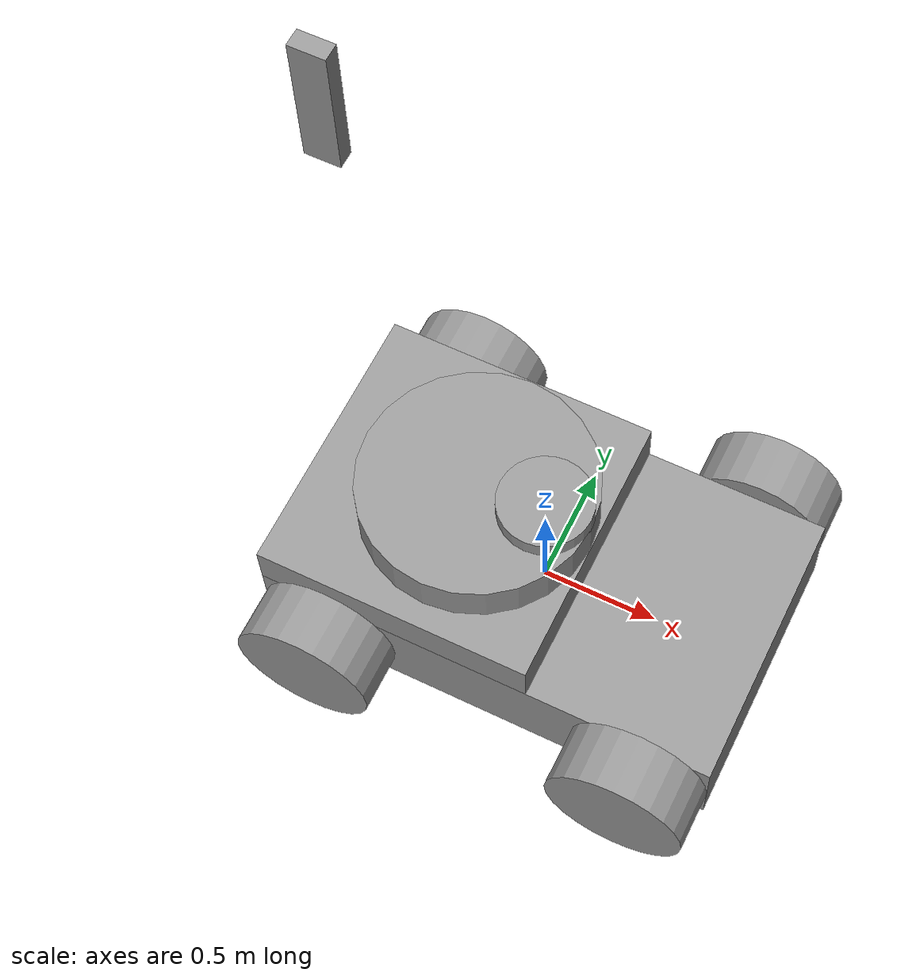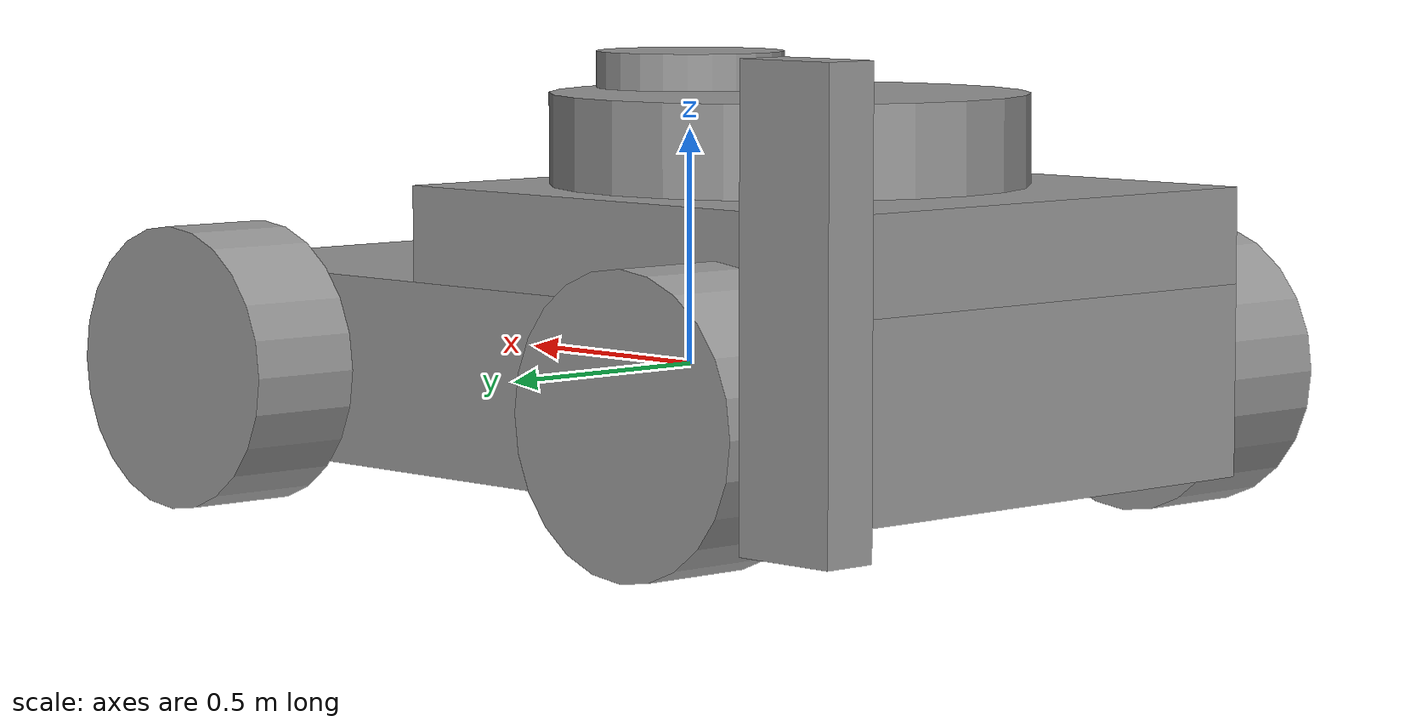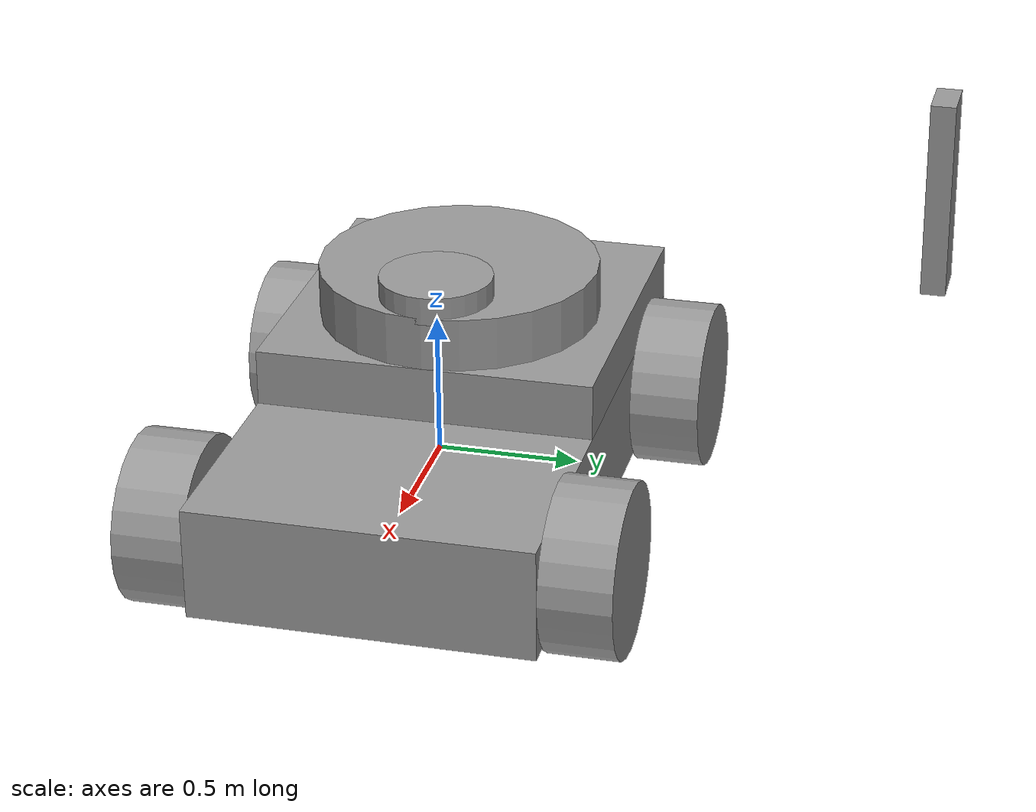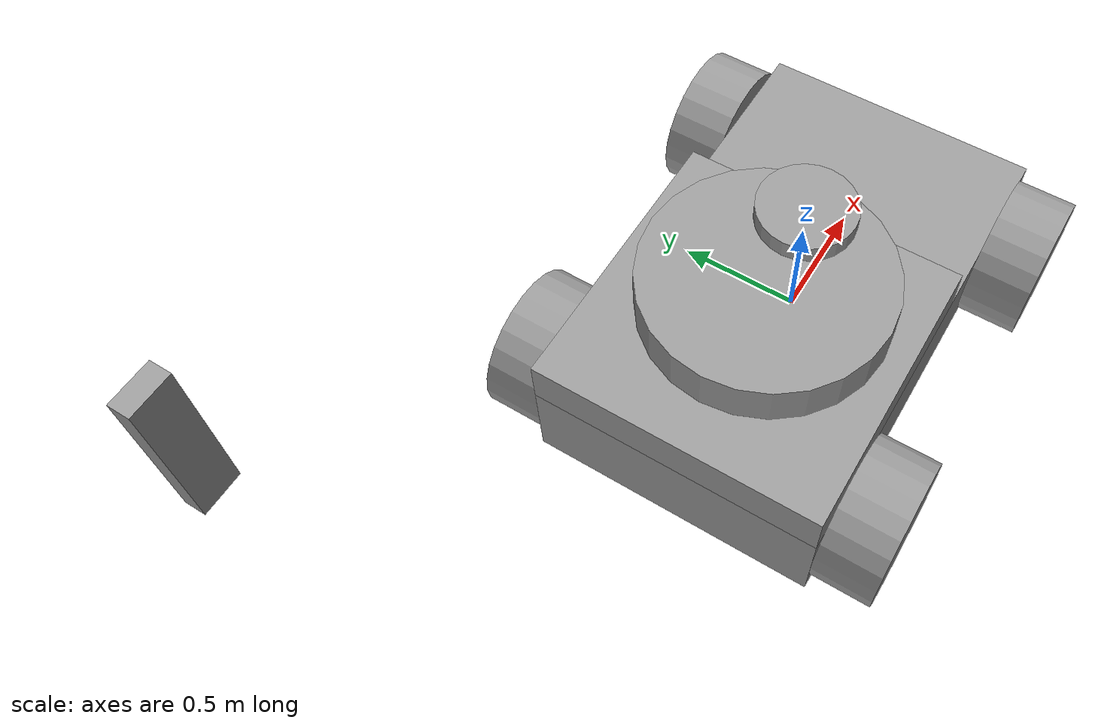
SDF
<?xml version='1.0'?>
  <sdf version='1.7'>
  <model name='assignment2'>
  <link name='link'>
  <inertial>
  <mass>1</mass>
  <inertia>
  <ixx>0.166667</ixx>
  <ixy>0</ixy>
  <ixz>0</ixz>
  <iyy>0.166667</iyy>
  <iyz>0</iyz>
  <izz>0.166667</izz>
  </inertia>
  <pose>0 0 0 0 -0 0</pose>
  </inertial>
  <self_collide>0</self_collide>
  <enable_wind>0</enable_wind>
  <kinematic>0</kinematic>
  <pose>0 0 0 0 -0 0</pose>
  <gravity>1</gravity>
  <visual name='visual'>
  <geometry>
  <box>
  <size>2 1.2 0.4</size>
  </box>
  </geometry>
  <material>
  <script>
  <name>Gazebo/Grey</name>
  <uri>file://media/materials/scripts/gazebo.material</uri>
  </script>
  <shader type='pixel'>
  <normal_map>__default__</normal_map>
  </shader>
  <ambient>0.3 0.3 0.3 1</ambient>
  <diffuse>0.7 0.7 0.7 1</diffuse>
  <specular>0.01 0.01 0.01 1</specular>
  <emissive>0 0 0 1</emissive>
  </material>
  <pose>0 0 0 0 -0 0</pose>
  <transparency>0</transparency>
  <cast_shadows>1</cast_shadows>
  </visual>
  <collision name='collision'>
  <laser_retro>0</laser_retro>
  <max_contacts>10</max_contacts>
  <pose>0 0 0 0 -0 0</pose>
  <geometry>
  <box>
  <size>2 1.2 0.4</size>
  </box>
  </geometry>
  <surface>
  <friction>
  <ode>
  <mu>1</mu>
  <mu2>1</mu2>
  <fdir1>0 0 0</fdir1>
  <slip1>0</slip1>
  <slip2>0</slip2>
  </ode>
  <torsional>
  <coefficient>1</coefficient>
  <patch_radius>0</patch_radius>
  <surface_radius>0</surface_radius>
  <use_patch_radius>1</use_patch_radius>
  <ode>
  <slip>0</slip>
  </ode>
  </torsional>
  </friction>
  <bounce>
  <restitution_coefficient>0</restitution_coefficient>
  <threshold>1e+06</threshold>
  </bounce>
  <contact>
  <collide_without_contact>0</collide_without_contact>
  <collide_without_contact_bitmask>1</collide_without_contact_bitmask>
  <collide_bitmask>1</collide_bitmask>
  <ode>
  <soft_cfm>0</soft_cfm>
  <soft_erp>0.2</soft_erp>
  <kp>1e+13</kp>
  <kd>1</kd>
  <max_vel>0.01</max_vel>
  <min_depth>0</min_depth>
  </ode>
  <bullet>
  <split_impulse>1</split_impulse>
  <split_impulse_penetration_threshold>-0.01</split_impulse_penetration_threshold>
  <soft_cfm>0</soft_cfm>
  <soft_erp>0.2</soft_erp>
  <kp>1e+13</kp>
  <kd>1</kd>
  </bullet>
  </contact>
  </surface>
  </collision>
  </link>
  <link name='link_0'>
  <inertial>
  <mass>1</mass>
  <inertia>
  <ixx>0.145833</ixx>
  <ixy>0</ixy>
  <ixz>0</ixz>
  <iyy>0.145833</iyy>
  <iyz>0</iyz>
  <izz>0.125</izz>
  </inertia>
  <pose>0 0 0 0 -0 0</pose>
  </inertial>
  <pose>-0.7 -0.725029 -1e-06 1.5707 -0 0</pose>
  <gravity>1</gravity>
  <self_collide>0</self_collide>
  <kinematic>0</kinematic>
  <enable_wind>0</enable_wind>
  <visual name='visual'>
  <pose>0 0 0 0 -0 0</pose>
  <geometry>
  <cylinder>
  <radius>0.3</radius>
  <length>0.25</length>
  </cylinder>
  </geometry>
  <material>
  <lighting>1</lighting>
  <script>
  <uri>file://media/materials/scripts/gazebo.material</uri>
  <name>Gazebo/Grey</name>
  </script>
  <shader type='pixel'>
  <normal_map>__default__</normal_map>
  </shader>
  <ambient>0.3 0.3 0.3 1</ambient>
  <diffuse>0.7 0.7 0.7 1</diffuse>
  <specular>0.01 0.01 0.01 1</specular>
  <emissive>0 0 0 1</emissive>
  </material>
  <transparency>0</transparency>
  <cast_shadows>1</cast_shadows>
  </visual>
  <collision name='collision'>
  <laser_retro>0</laser_retro>
  <max_contacts>10</max_contacts>
  <pose>0 0 0 0 -0 0</pose>
  <geometry>
  <cylinder>
  <radius>0.3</radius>
  <length>0.25</length>
  </cylinder>
  </geometry>
  <surface>
  <friction>
  <ode>
  <mu>1</mu>
  <mu2>1</mu2>
  <fdir1>0 0 0</fdir1>
  <slip1>0</slip1>
  <slip2>0</slip2>
  </ode>
  <torsional>
  <coefficient>1</coefficient>
  <patch_radius>0</patch_radius>
  <surface_radius>0</surface_radius>
  <use_patch_radius>1</use_patch_radius>
  <ode>
  <slip>0</slip>
  </ode>
  </torsional>
  </friction>
  <bounce>
  <restitution_coefficient>0</restitution_coefficient>
  <threshold>1e+06</threshold>
  </bounce>
  <contact>
  <collide_without_contact>0</collide_without_contact>
  <collide_without_contact_bitmask>1</collide_without_contact_bitmask>
  <collide_bitmask>1</collide_bitmask>
  <ode>
  <soft_cfm>0</soft_cfm>
  <soft_erp>0.2</soft_erp>
  <kp>1e+13</kp>
  <kd>1</kd>
  <max_vel>0.01</max_vel>
  <min_depth>0</min_depth>
  </ode>
  <bullet>
  <split_impulse>1</split_impulse>
  <split_impulse_penetration_threshold>-0.01</split_impulse_penetration_threshold>
  <soft_cfm>0</soft_cfm>
  <soft_erp>0.2</soft_erp>
  <kp>1e+13</kp>
  <kd>1</kd>
  </bullet>
  </contact>
  </surface>
  </collision>
  </link>
  <link name='link_0_clone'>
  <inertial>
  <mass>1</mass>
  <inertia>
  <ixx>0.145833</ixx>
  <ixy>0</ixy>
  <ixz>0</ixz>
  <iyy>0.145833</iyy>
  <iyz>0</iyz>
  <izz>0.125</izz>
  </inertia>
  <pose>0 0 0 0 -0 0</pose>
  </inertial>
  <pose>0.7 -0.725029 -0 1.5707 -0 0</pose>
  <gravity>1</gravity>
  <self_collide>0</self_collide>
  <kinematic>0</kinematic>
  <enable_wind>0</enable_wind>
  <visual name='visual'>
  <pose>0 0 0 0 -0 0</pose>
  <geometry>
  <cylinder>
  <radius>0.3</radius>
  <length>0.25</length>
  </cylinder>
  </geometry>
  <material>
  <lighting>1</lighting>
  <script>
  <uri>file://media/materials/scripts/gazebo.material</uri>
  <name>Gazebo/Grey</name>
  </script>
  <shader type='pixel'>
  <normal_map>__default__</normal_map>
  </shader>
  <ambient>0.3 0.3 0.3 1</ambient>
  <diffuse>0.7 0.7 0.7 1</diffuse>
  <specular>0.01 0.01 0.01 1</specular>
  <emissive>0 0 0 1</emissive>
  </material>
  <transparency>0</transparency>
  <cast_shadows>1</cast_shadows>
  </visual>
  <collision name='collision'>
  <laser_retro>0</laser_retro>
  <max_contacts>10</max_contacts>
  <pose>0 0 0 0 -0 0</pose>
  <geometry>
  <cylinder>
  <radius>0.3</radius>
  <length>0.25</length>
  </cylinder>
  </geometry>
  <surface>
  <friction>
  <ode>
  <mu>1</mu>
  <mu2>1</mu2>
  <fdir1>0 0 0</fdir1>
  <slip1>0</slip1>
  <slip2>0</slip2>
  </ode>
  <torsional>
  <coefficient>1</coefficient>
  <patch_radius>0</patch_radius>
  <surface_radius>0</surface_radius>
  <use_patch_radius>1</use_patch_radius>
  <ode>
  <slip>0</slip>
  </ode>
  </torsional>
  </friction>
  <bounce>
  <restitution_coefficient>0</restitution_coefficient>
  <threshold>1e+06</threshold>
  </bounce>
  <contact>
  <collide_without_contact>0</collide_without_contact>
  <collide_without_contact_bitmask>1</collide_without_contact_bitmask>
  <collide_bitmask>1</collide_bitmask>
  <ode>
  <soft_cfm>0</soft_cfm>
  <soft_erp>0.2</soft_erp>
  <kp>1e+13</kp>
  <kd>1</kd>
  <max_vel>0.01</max_vel>
  <min_depth>0</min_depth>
  </ode>
  <bullet>
  <split_impulse>1</split_impulse>
  <split_impulse_penetration_threshold>-0.01</split_impulse_penetration_threshold>
  <soft_cfm>0</soft_cfm>
  <soft_erp>0.2</soft_erp>
  <kp>1e+13</kp>
  <kd>1</kd>
  </bullet>
  </contact>
  </surface>
  </collision>
  </link>
  <link name='link_0_clone_0'>
  <inertial>
  <mass>1</mass>
  <inertia>
  <ixx>0.145833</ixx>
  <ixy>0</ixy>
  <ixz>0</ixz>
  <iyy>0.145833</iyy>
  <iyz>0</iyz>
  <izz>0.125</izz>
  </inertia>
  <pose>0 0 0 0 -0 0</pose>
  </inertial>
  <pose>0.7 0.725029 0 1.5707 -0 0</pose>
  <gravity>1</gravity>
  <self_collide>0</self_collide>
  <kinematic>0</kinematic>
  <enable_wind>0</enable_wind>
  <visual name='visual'>
  <pose>0 0 0 0 -0 0</pose>
  <geometry>
  <cylinder>
  <radius>0.3</radius>
  <length>0.25</length>
  </cylinder>
  </geometry>
  <material>
  <lighting>1</lighting>
  <script>
  <uri>file://media/materials/scripts/gazebo.material</uri>
  <name>Gazebo/Grey</name>
  </script>
  <shader type='pixel'>
  <normal_map>__default__</normal_map>
  </shader>
  <ambient>0.3 0.3 0.3 1</ambient>
  <diffuse>0.7 0.7 0.7 1</diffuse>
  <specular>0.01 0.01 0.01 1</specular>
  <emissive>0 0 0 1</emissive>
  </material>
  <transparency>0</transparency>
  <cast_shadows>1</cast_shadows>
  </visual>
  <collision name='collision'>
  <laser_retro>0</laser_retro>
  <max_contacts>10</max_contacts>
  <pose>0 0 0 0 -0 0</pose>
  <geometry>
  <cylinder>
  <radius>0.3</radius>
  <length>0.25</length>
  </cylinder>
  </geometry>
  <surface>
  <friction>
  <ode>
  <mu>1</mu>
  <mu2>1</mu2>
  <fdir1>0 0 0</fdir1>
  <slip1>0</slip1>
  <slip2>0</slip2>
  </ode>
  <torsional>
  <coefficient>1</coefficient>
  <patch_radius>0</patch_radius>
  <surface_radius>0</surface_radius>
  <use_patch_radius>1</use_patch_radius>
  <ode>
  <slip>0</slip>
  </ode>
  </torsional>
  </friction>
  <bounce>
  <restitution_coefficient>0</restitution_coefficient>
  <threshold>1e+06</threshold>
  </bounce>
  <contact>
  <collide_without_contact>0</collide_without_contact>
  <collide_without_contact_bitmask>1</collide_without_contact_bitmask>
  <collide_bitmask>1</collide_bitmask>
  <ode>
  <soft_cfm>0</soft_cfm>
  <soft_erp>0.2</soft_erp>
  <kp>1e+13</kp>
  <kd>1</kd>
  <max_vel>0.01</max_vel>
  <min_depth>0</min_depth>
  </ode>
  <bullet>
  <split_impulse>1</split_impulse>
  <split_impulse_penetration_threshold>-0.01</split_impulse_penetration_threshold>
  <soft_cfm>0</soft_cfm>
  <soft_erp>0.2</soft_erp>
  <kp>1e+13</kp>
  <kd>1</kd>
  </bullet>
  </contact>
  </surface>
  </collision>
  </link>
  <link name='link_0_clone_1'>
  <inertial>
  <mass>1</mass>
  <inertia>
  <ixx>0.145833</ixx>
  <ixy>0</ixy>
  <ixz>0</ixz>
  <iyy>0.145833</iyy>
  <iyz>0</iyz>
  <izz>0.125</izz>
  </inertia>
  <pose>0 0 0 0 -0 0</pose>
  </inertial>
  <pose>-0.7 0.725029 0 1.5707 -0 0</pose>
  <gravity>1</gravity>
  <self_collide>0</self_collide>
  <kinematic>0</kinematic>
  <enable_wind>0</enable_wind>
  <visual name='visual'>
  <pose>0 0 0 0 -0 0</pose>
  <geometry>
  <cylinder>
  <radius>0.3</radius>
  <length>0.25</length>
  </cylinder>
  </geometry>
  <material>
  <lighting>1</lighting>
  <script>
  <uri>file://media/materials/scripts/gazebo.material</uri>
  <name>Gazebo/Grey</name>
  </script>
  <shader type='pixel'>
  <normal_map>__default__</normal_map>
  </shader>
  <ambient>0.3 0.3 0.3 1</ambient>
  <diffuse>0.7 0.7 0.7 1</diffuse>
  <specular>0.01 0.01 0.01 1</specular>
  <emissive>0 0 0 1</emissive>
  </material>
  <transparency>0</transparency>
  <cast_shadows>1</cast_shadows>
  </visual>
  <collision name='collision'>
  <laser_retro>0</laser_retro>
  <max_contacts>10</max_contacts>
  <pose>0 0 0 0 -0 0</pose>
  <geometry>
  <cylinder>
  <radius>0.3</radius>
  <length>0.25</length>
  </cylinder>
  </geometry>
  <surface>
  <friction>
  <ode>
  <mu>1</mu>
  <mu2>1</mu2>
  <fdir1>0 0 0</fdir1>
  <slip1>0</slip1>
  <slip2>0</slip2>
  </ode>
  <torsional>
  <coefficient>1</coefficient>
  <patch_radius>0</patch_radius>
  <surface_radius>0</surface_radius>
  <use_patch_radius>1</use_patch_radius>
  <ode>
  <slip>0</slip>
  </ode>
  </torsional>
  </friction>
  <bounce>
  <restitution_coefficient>0</restitution_coefficient>
  <threshold>1e+06</threshold>
  </bounce>
  <contact>
  <collide_without_contact>0</collide_without_contact>
  <collide_without_contact_bitmask>1</collide_without_contact_bitmask>
  <collide_bitmask>1</collide_bitmask>
  <ode>
  <soft_cfm>0</soft_cfm>
  <soft_erp>0.2</soft_erp>
  <kp>1e+13</kp>
  <kd>1</kd>
  <max_vel>0.01</max_vel>
  <min_depth>0</min_depth>
  </ode>
  <bullet>
  <split_impulse>1</split_impulse>
  <split_impulse_penetration_threshold>-0.01</split_impulse_penetration_threshold>
  <soft_cfm>0</soft_cfm>
  <soft_erp>0.2</soft_erp>
  <kp>1e+13</kp>
  <kd>1</kd>
  </bullet>
  </contact>
  </surface>
  </collision>
  </link>
  <link name='link_1'>
  <inertial>
  <mass>1</mass>
  <inertia>
  <ixx>0.166667</ixx>
  <ixy>0</ixy>
  <ixz>0</ixz>
  <iyy>0.166667</iyy>
  <iyz>0</iyz>
  <izz>0.166667</izz>
  </inertia>
  <pose>0 0 0 0 -0 0</pose>
  </inertial>
  <pose>-0.4 -0 0.3 0 -0 0</pose>
  <gravity>1</gravity>
  <self_collide>0</self_collide>
  <kinematic>0</kinematic>
  <enable_wind>0</enable_wind>
  <visual name='visual'>
  <pose>0 0 0 0 -0 0</pose>
  <geometry>
  <box>
  <size>1.2 1.2 0.2</size>
  </box>
  </geometry>
  <material>
  <lighting>1</lighting>
  <script>
  <uri>file://media/materials/scripts/gazebo.material</uri>
  <name>Gazebo/Grey</name>
  </script>
  <shader type='pixel'>
  <normal_map>__default__</normal_map>
  </shader>
  <ambient>0.3 0.3 0.3 1</ambient>
  <diffuse>0.7 0.7 0.7 1</diffuse>
  <specular>0.01 0.01 0.01 1</specular>
  <emissive>0 0 0 1</emissive>
  </material>
  <transparency>0</transparency>
  <cast_shadows>1</cast_shadows>
  </visual>
  <collision name='collision'>
  <laser_retro>0</laser_retro>
  <max_contacts>10</max_contacts>
  <pose>0 0 0 0 -0 0</pose>
  <geometry>
  <box>
  <size>1.2 1.2 0.2</size>
  </box>
  </geometry>
  <surface>
  <friction>
  <ode>
  <mu>1</mu>
  <mu2>1</mu2>
  <fdir1>0 0 0</fdir1>
  <slip1>0</slip1>
  <slip2>0</slip2>
  </ode>
  <torsional>
  <coefficient>1</coefficient>
  <patch_radius>0</patch_radius>
  <surface_radius>0</surface_radius>
  <use_patch_radius>1</use_patch_radius>
  <ode>
  <slip>0</slip>
  </ode>
  </torsional>
  </friction>
  <bounce>
  <restitution_coefficient>0</restitution_coefficient>
  <threshold>1e+06</threshold>
  </bounce>
  <contact>
  <collide_without_contact>0</collide_without_contact>
  <collide_without_contact_bitmask>1</collide_without_contact_bitmask>
  <collide_bitmask>1</collide_bitmask>
  <ode>
  <soft_cfm>0</soft_cfm>
  <soft_erp>0.2</soft_erp>
  <kp>1e+13</kp>
  <kd>1</kd>
  <max_vel>0.01</max_vel>
  <min_depth>0</min_depth>
  </ode>
  <bullet>
  <split_impulse>1</split_impulse>
  <split_impulse_penetration_threshold>-0.01</split_impulse_penetration_threshold>
  <soft_cfm>0</soft_cfm>
  <soft_erp>0.2</soft_erp>
  <kp>1e+13</kp>
  <kd>1</kd>
  </bullet>
  </contact>
  </surface>
  </collision>
  </link>
  <link name='link_2'>
  <inertial>
  <mass>1</mass>
  <inertia>
  <ixx>0.145833</ixx>
  <ixy>0</ixy>
  <ixz>0</ixz>
  <iyy>0.145833</iyy>
  <iyz>0</iyz>
  <izz>0.125</izz>
  </inertia>
  <pose>0 0 0 0 -0 0</pose>
  </inertial>
  <pose>-0.3 0 0.49 0 -0 0</pose>
  <gravity>1</gravity>
  <self_collide>0</self_collide>
  <kinematic>0</kinematic>
  <enable_wind>0</enable_wind>
  <visual name='visual'>
  <pose>0 0 0 0 -0 0</pose>
  <geometry>
  <cylinder>
  <radius>0.5</radius>
  <length>0.2</length>
  </cylinder>
  </geometry>
  <material>
  <lighting>1</lighting>
  <script>
  <uri>file://media/materials/scripts/gazebo.material</uri>
  <name>Gazebo/Grey</name>
  </script>
  <shader type='pixel'>
  <normal_map>__default__</normal_map>
  </shader>
  <ambient>0.3 0.3 0.3 1</ambient>
  <diffuse>0.7 0.7 0.7 1</diffuse>
  <specular>0.01 0.01 0.01 1</specular>
  <emissive>0 0 0 1</emissive>
  </material>
  <transparency>0</transparency>
  <cast_shadows>1</cast_shadows>
  </visual>
  <collision name='collision'>
  <laser_retro>0</laser_retro>
  <max_contacts>10</max_contacts>
  <pose>0 0 0 0 -0 0</pose>
  <geometry>
  <cylinder>
  <radius>0.5</radius>
  <length>0.2</length>
  </cylinder>
  </geometry>
  <surface>
  <friction>
  <ode>
  <mu>1</mu>
  <mu2>1</mu2>
  <fdir1>0 0 0</fdir1>
  <slip1>0</slip1>
  <slip2>0</slip2>
  </ode>
  <torsional>
  <coefficient>1</coefficient>
  <patch_radius>0</patch_radius>
  <surface_radius>0</surface_radius>
  <use_patch_radius>1</use_patch_radius>
  <ode>
  <slip>0</slip>
  </ode>
  </torsional>
  </friction>
  <bounce>
  <restitution_coefficient>0</restitution_coefficient>
  <threshold>1e+06</threshold>
  </bounce>
  <contact>
  <collide_without_contact>0</collide_without_contact>
  <collide_without_contact_bitmask>1</collide_without_contact_bitmask>
  <collide_bitmask>1</collide_bitmask>
  <ode>
  <soft_cfm>0</soft_cfm>
  <soft_erp>0.2</soft_erp>
  <kp>1e+13</kp>
  <kd>1</kd>
  <max_vel>0.01</max_vel>
  <min_depth>0</min_depth>
  </ode>
  <bullet>
  <split_impulse>1</split_impulse>
  <split_impulse_penetration_threshold>-0.01</split_impulse_penetration_threshold>
  <soft_cfm>0</soft_cfm>
  <soft_erp>0.2</soft_erp>
  <kp>1e+13</kp>
  <kd>1</kd>
  </bullet>
  </contact>
  </surface>
  </collision>
  </link>
  <link name='link_3'>
  <inertial>
  <mass>1</mass>
  <inertia>
  <ixx>0.145833</ixx>
  <ixy>0</ixy>
  <ixz>0</ixz>
  <iyy>0.145833</iyy>
  <iyz>0</iyz>
  <izz>0.125</izz>
  </inertia>
  <pose>0 0 0 0 -0 0</pose>
  </inertial>
  <pose>-0 0 0.617372 0 -0 0</pose>
  <gravity>1</gravity>
  <self_collide>0</self_collide>
  <kinematic>0</kinematic>
  <enable_wind>0</enable_wind>
  <visual name='visual'>
  <pose>0 0 0 0 -0 0</pose>
  <geometry>
  <cylinder>
  <radius>0.2</radius>
  <length>0.1</length>
  </cylinder>
  </geometry>
  <material>
  <lighting>1</lighting>
  <script>
  <uri>file://media/materials/scripts/gazebo.material</uri>
  <name>Gazebo/Grey</name>
  </script>
  <shader type='pixel'>
  <normal_map>__default__</normal_map>
  </shader>
  <ambient>0.3 0.3 0.3 1</ambient>
  <diffuse>0.7 0.7 0.7 1</diffuse>
  <specular>0.01 0.01 0.01 1</specular>
  <emissive>0 0 0 1</emissive>
  </material>
  <transparency>0</transparency>
  <cast_shadows>1</cast_shadows>
  </visual>
  <collision name='collision'>
  <laser_retro>0</laser_retro>
  <max_contacts>10</max_contacts>
  <pose>0 0 0 0 -0 0</pose>
  <geometry>
  <cylinder>
  <radius>0.2</radius>
  <length>0.1</length>
  </cylinder>
  </geometry>
  <surface>
  <friction>
  <ode>
  <mu>1</mu>
  <mu2>1</mu2>
  <fdir1>0 0 0</fdir1>
  <slip1>0</slip1>
  <slip2>0</slip2>
  </ode>
  <torsional>
  <coefficient>1</coefficient>
  <patch_radius>0</patch_radius>
  <surface_radius>0</surface_radius>
  <use_patch_radius>1</use_patch_radius>
  <ode>
  <slip>0</slip>
  </ode>
  </torsional>
  </friction>
  <bounce>
  <restitution_coefficient>0</restitution_coefficient>
  <threshold>1e+06</threshold>
  </bounce>
  <contact>
  <collide_without_contact>0</collide_without_contact>
  <collide_without_contact_bitmask>1</collide_without_contact_bitmask>
  <collide_bitmask>1</collide_bitmask>
  <ode>
  <soft_cfm>0</soft_cfm>
  <soft_erp>0.2</soft_erp>
  <kp>1e+13</kp>
  <kd>1</kd>
  <max_vel>0.01</max_vel>
  <min_depth>0</min_depth>
  </ode>
  <bullet>
  <split_impulse>1</split_impulse>
  <split_impulse_penetration_threshold>-0.01</split_impulse_penetration_threshold>
  <soft_cfm>0</soft_cfm>
  <soft_erp>0.2</soft_erp>
  <kp>1e+13</kp>
  <kd>1</kd>
  </bullet>
  </contact>
  </surface>
  </collision>
  </link>
  <link name='link_4'>
  <inertial>
  <mass>1</mass>
  <inertia>
  <ixx>0.166667</ixx>
  <ixy>0</ixy>
  <ixz>0</ixz>
  <iyy>0.166667</iyy>
  <iyz>0</iyz>
  <izz>0.166667</izz>
  </inertia>
  <pose>0 0 0 0 -0 0</pose>
  </inertial>
  <pose>-1.87815 1.53239 0.35 0 -0 0</pose>
  <gravity>1</gravity>
  <self_collide>0</self_collide>
  <kinematic>0</kinematic>
  <enable_wind>0</enable_wind>
  <visual name='visual'>
  <pose>0 0 0 0 -0 0</pose>
  <geometry>
  <box>
  <size>0.2 0.1 0.8</size>
  </box>
  </geometry>
  <material>
  <lighting>1</lighting>
  <script>
  <uri>file://media/materials/scripts/gazebo.material</uri>
  <name>Gazebo/Grey</name>
  </script>
  <shader type='pixel'>
  <normal_map>__default__</normal_map>
  </shader>
  <ambient>0.3 0.3 0.3 1</ambient>
  <diffuse>0.7 0.7 0.7 1</diffuse>
  <specular>0.01 0.01 0.01 1</specular>
  <emissive>0 0 0 1</emissive>
  </material>
  <transparency>0</transparency>
  <cast_shadows>1</cast_shadows>
  </visual>
  <collision name='collision'>
  <laser_retro>0</laser_retro>
  <max_contacts>10</max_contacts>
  <pose>0 0 0 0 -0 0</pose>
  <geometry>
  <box>
  <size>0.2 0.1 0.8</size>
  </box>
  </geometry>
  <surface>
  <friction>
  <ode>
  <mu>1</mu>
  <mu2>1</mu2>
  <fdir1>0 0 0</fdir1>
  <slip1>0</slip1>
  <slip2>0</slip2>
  </ode>
  <torsional>
  <coefficient>1</coefficient>
  <patch_radius>0</patch_radius>
  <surface_radius>0</surface_radius>
  <use_patch_radius>1</use_patch_radius>
  <ode>
  <slip>0</slip>
  </ode>
  </torsional>
  </friction>
  <bounce>
  <restitution_coefficient>0</restitution_coefficient>
  <threshold>1e+06</threshold>
  </bounce>
  <contact>
  <collide_without_contact>0</collide_without_contact>
  <collide_without_contact_bitmask>1</collide_without_contact_bitmask>
  <collide_bitmask>1</collide_bitmask>
  <ode>
  <soft_cfm>0</soft_cfm>
  <soft_erp>0.2</soft_erp>
  <kp>1e+13</kp>
  <kd>1</kd>
  <max_vel>0.01</max_vel>
  <min_depth>0</min_depth>
  </ode>
  <bullet>
  <split_impulse>1</split_impulse>
  <split_impulse_penetration_threshold>-0.01</split_impulse_penetration_threshold>
  <soft_cfm>0</soft_cfm>
  <soft_erp>0.2</soft_erp>
  <kp>1e+13</kp>
  <kd>1</kd>
  </bullet>
  </contact>
  </surface>
  </collision>
  </link>
  <joint name='link_1_JOINT_6' type='fixed'>
  <parent>link_1</parent>
  <child>link_2</child>
  <pose>0 0 0 0 -0 0</pose>
  <physics>
  <ode>
  <limit>
  <cfm>0</cfm>
  <erp>0.2</erp>
  </limit>
  <suspension>
  <cfm>0</cfm>
  <erp>0.2</erp>
  </suspension>
  </ode>
  </physics>
  </joint>
  <joint name='link_2_JOINT_11' type='revolute'>
  <parent>link_2</parent>
  <child>link_3</child>
  <pose>0 0 0 0 -0 0</pose>
  <axis>
  <xyz>1 0 0</xyz>
  <limit>
  <lower>-1.79769e+308</lower>
  <upper>1.79769e+308</upper>
  <effort>-1</effort>
  <velocity>-1</velocity>
  </limit>
  <dynamics>
  <spring_reference>0</spring_reference>
  <spring_stiffness>0</spring_stiffness>
  <damping>0</damping>
  </dynamics>
  </axis>
  <physics>
  <ode>
  <limit>
  <cfm>0</cfm>
  <erp>0.2</erp>
  </limit>
  <suspension>
  <cfm>0</cfm>
  <erp>0.2</erp>
  </suspension>
  </ode>
  </physics>
  </joint>
  <joint name='link_3_JOINT_8' type='revolute'>
  <parent>link_3</parent>
  <child>link_4</child>
  <pose>0 0 0 0 -0 0</pose>
  <axis>
  <xyz>1 0 0</xyz>
  <limit>
  <lower>-1.79769e+308</lower>
  <upper>1.79769e+308</upper>
  <effort>-1</effort>
  <velocity>-1</velocity>
  </limit>
  <dynamics>
  <spring_reference>0</spring_reference>
  <spring_stiffness>0</spring_stiffness>
  <damping>0</damping>
  </dynamics>
  </axis>
  <physics>
  <ode>
  <limit>
  <cfm>0</cfm>
  <erp>0.2</erp>
  </limit>
  <suspension>
  <cfm>0</cfm>
  <erp>0.2</erp>
  </suspension>
  </ode>
  </physics>
  </joint>
  <joint name='link_JOINT_0' type='revolute'>
  <parent>link</parent>
  <child>link_0</child>
  <pose>0 0 0 0 -0 0</pose>
  <axis>
  <xyz>-0 -0 -1</xyz>
  <limit>
  <lower>-1.79769e+308</lower>
  <upper>1.79769e+308</upper>
  <effort>-1</effort>
  <velocity>-1</velocity>
  </limit>
  <dynamics>
  <spring_reference>0</spring_reference>
  <spring_stiffness>0</spring_stiffness>
  <damping>0</damping>
  </dynamics>
  </axis>
  <physics>
  <ode>
  <limit>
  <cfm>0</cfm>
  <erp>0.2</erp>
  </limit>
  <suspension>
  <cfm>0</cfm>
  <erp>0.2</erp>
  </suspension>
  </ode>
  </physics>
  </joint>
  <joint name='link_JOINT_1' type='revolute'>
  <parent>link</parent>
  <child>link_0_clone</child>
  <pose>0 0 0 0 -0 0</pose>
  <axis>
  <xyz>-0 -0 -1</xyz>
  <limit>
  <lower>-1.79769e+308</lower>
  <upper>1.79769e+308</upper>
  <effort>-1</effort>
  <velocity>-1</velocity>
  </limit>
  <dynamics>
  <spring_reference>0</spring_reference>
  <spring_stiffness>0</spring_stiffness>
  <damping>0</damping>
  </dynamics>
  </axis>
  <physics>
  <ode>
  <limit>
  <cfm>0</cfm>
  <erp>0.2</erp>
  </limit>
  <suspension>
  <cfm>0</cfm>
  <erp>0.2</erp>
  </suspension>
  </ode>
  </physics>
  </joint>
  <joint name='link_JOINT_2' type='revolute'>
  <parent>link</parent>
  <child>link_0_clone_1</child>
  <pose>0 0 0 0 -0 0</pose>
  <axis>
  <xyz>-0 -0 -1</xyz>
  <limit>
  <lower>-1.79769e+308</lower>
  <upper>1.79769e+308</upper>
  <effort>-1</effort>
  <velocity>-1</velocity>
  </limit>
  <dynamics>
  <spring_reference>0</spring_reference>
  <spring_stiffness>0</spring_stiffness>
  <damping>0</damping>
  </dynamics>
  </axis>
  <physics>
  <ode>
  <limit>
  <cfm>0</cfm>
  <erp>0.2</erp>
  </limit>
  <suspension>
  <cfm>0</cfm>
  <erp>0.2</erp>
  </suspension>
  </ode>
  </physics>
  </joint>
  <joint name='link_JOINT_3' type='revolute'>
  <parent>link</parent>
  <child>link_0_clone_0</child>
  <pose>0 0 0 0 -0 0</pose>
  <axis>
  <xyz>-0 -0 -1</xyz>
  <limit>
  <lower>-1.79769e+308</lower>
  <upper>1.79769e+308</upper>
  <effort>-1</effort>
  <velocity>-1</velocity>
  </limit>
  <dynamics>
  <spring_reference>0</spring_reference>
  <spring_stiffness>0</spring_stiffness>
  <damping>0</damping>
  </dynamics>
  </axis>
  <physics>
  <ode>
  <limit>
  <cfm>0</cfm>
  <erp>0.2</erp>
  </limit>
  <suspension>
  <cfm>0</cfm>
  <erp>0.2</erp>
  </suspension>
  </ode>
  </physics>
  </joint>
  <joint name='link_JOINT_4' type='fixed'>
  <parent>link</parent>
  <child>link_1</child>
  <pose>0 0 0 0 -0 0</pose>
  <physics>
  <ode>
  <limit>
  <cfm>0</cfm>
  <erp>0.2</erp>
  </limit>
  <suspension>
  <cfm>0</cfm>
  <erp>0.2</erp>
  </suspension>
  </ode>
  </physics>
  </joint>
  <static>0</static>
  <allow_auto_disable>1</allow_auto_disable>
  </model>
</sdf>
